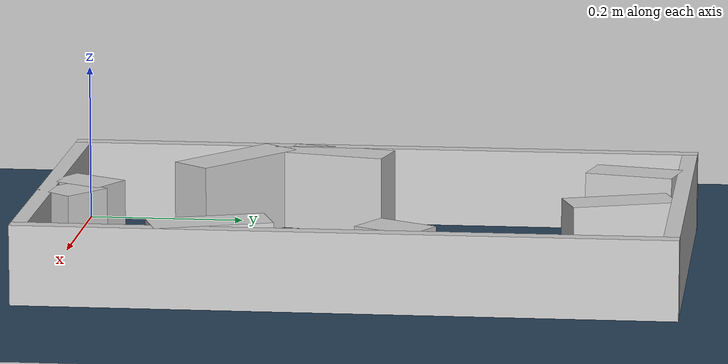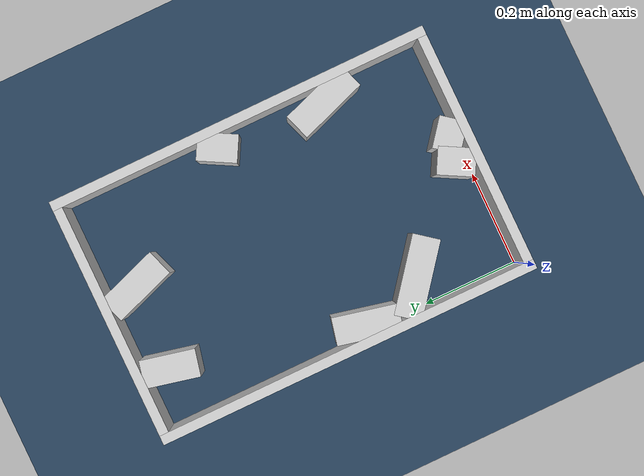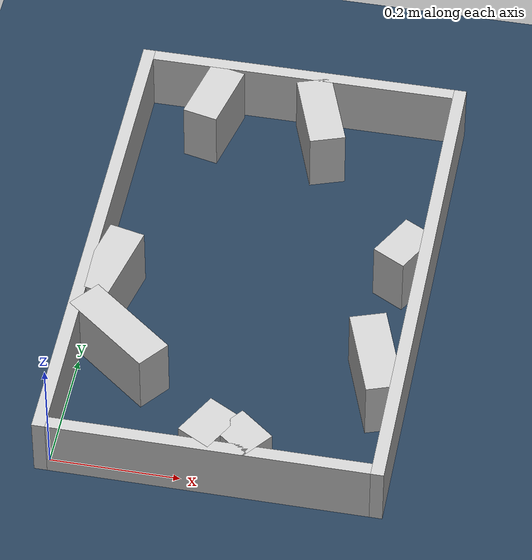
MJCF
<?xml version="1.0" ?>
<mujoco model="generated_real_template">
  <compiler angle="degree"/>
  <option timestep="0.002" integrator="implicitfast" iterations="100" cone="elliptic"/>
  <default>
    <geom density="1"/>
  </default>
  <asset>
    <texture builtin="gradient" height="3072" rgb1="0.3 0.5 0.7" rgb2="0 0 0" type="skybox" width="512"/>
    <texture builtin="checker" height="300" mark="edge" markrgb="0.8 0.8 0.8" name="groundplane" rgb1="0.2 0.3 0.4" rgb2="0.1 0.2 0.3" type="2d" width="300"/>
    <material name="groundplane" reflectance="0.2" texrepeat="5 5" texture="groundplane" texuniform="true"/>
  </asset>
  <worldbody>
    <light dir="0 0 -1" directional="true" pos="0 0 1.5"/>
    <geom name="floor" type="plane" condim="4" friction="0.5 0.005 0.001" material="groundplane" size="0 0 0.05"/>
    <body name="walls">
      <geom name="wall_boundary_left" type="box" condim="4" friction="1.0 0.005 0.0001" rgba="0.8 0.8 0.8 1" pos="-0.010000 0.387500 0.050000" euler="0 0 0.000000" size="0.010000 0.407500 0.050000"/>
      <geom name="wall_boundary_right" type="box" condim="4" friction="1.0 0.005 0.0001" rgba="0.8 0.8 0.8 1" pos="0.500000 0.387500 0.050000" euler="0 0 0.000000" size="0.010000 0.407500 0.050000"/>
      <geom name="wall_boundary_bottom" type="box" condim="4" friction="1.0 0.005 0.0001" rgba="0.8 0.8 0.8 1" pos="0.245000 -0.010000 0.050000" euler="0 0 0.000000" size="0.245000 0.010000 0.050000"/>
      <geom name="wall_boundary_top" type="box" condim="4" friction="1.0 0.005 0.0001" rgba="0.8 0.8 0.8 1" pos="0.245000 0.785000 0.050000" euler="0 0 0.000000" size="0.245000 0.010000 0.050000"/>
      <geom name="wall_inner_1_1" type="box" condim="4" friction="1.0 0.005 0.0001" rgba="0.8 0.8 0.8 1" pos="0.465353 0.448244 0.050000" euler="0 0 -118.677009" size="0.040932 0.028500 0.050000"/>
      <geom name="wall_inner_1_2" type="box" condim="4" friction="1.0 0.005 0.0001" rgba="0.8 0.8 0.8 1" pos="0.238598 0.033673 0.050000" euler="0 0 -118.677009" size="0.038381 0.028500 0.050000"/>
      <geom name="wall_inner_2_1" type="box" condim="4" friction="1.0 0.005 0.0001" rgba="0.8 0.8 0.8 1" pos="0.291536 0.022992 0.050000" euler="0 0 141.762899" size="0.033293 0.028500 0.050000"/>
      <geom name="wall_inner_2_2" type="box" condim="4" friction="1.0 0.005 0.0001" rgba="0.8 0.8 0.8 1" pos="0.065108 0.201412 0.050000" euler="0 0 141.762899" size="0.082891 0.028500 0.050000"/>
      <geom name="wall_inner_3_1" type="box" condim="4" friction="1.0 0.005 0.0001" rgba="0.8 0.8 0.8 1" pos="0.022784 0.330110 0.050000" euler="0 0 77.183151" size="0.067589 0.028500 0.050000"/>
      <geom name="wall_inner_3_2" type="box" condim="4" friction="1.0 0.005 0.0001" rgba="0.8 0.8 0.8 1" pos="0.111400 0.719621 0.050000" euler="0 0 77.183151" size="0.056794 0.028500 0.050000"/>
      <geom name="wall_inner_4_1" type="box" condim="4" friction="1.0 0.005 0.0001" rgba="0.8 0.8 0.8 1" pos="0.458655 0.219422 0.050000" euler="0 0 109.234932" size="0.074171 0.028500 0.050000"/>
      <geom name="wall_inner_4_2" type="box" condim="4" friction="1.0 0.005 0.0001" rgba="0.8 0.8 0.8 1" pos="0.287067 0.711191 0.050000" euler="0 0 109.234932" size="0.067582 0.028500 0.050000"/>
    </body>
  </worldbody>
</mujoco>
